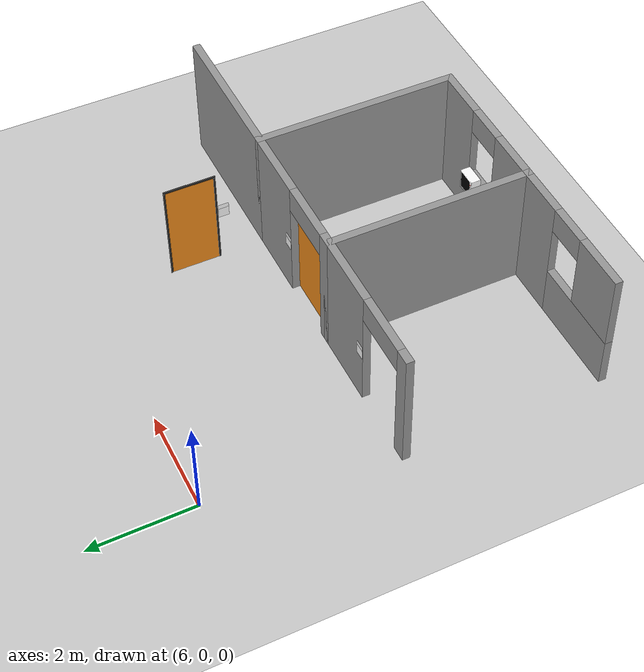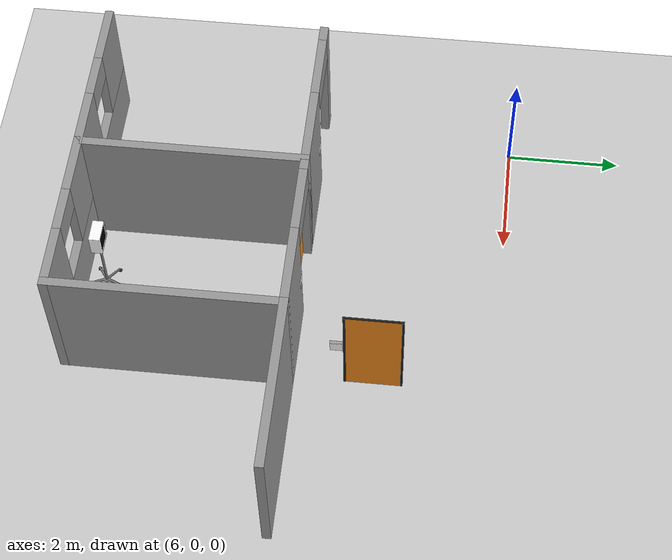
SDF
<sdf version="1.6">
 <world name="default">
  <model name="ground_plane">
   <static>1</static>
   <link name="link">
    <collision name="collision">
     <geometry><plane><normal>0 0 1</normal><size>100 100</size></plane></geometry>
     <surface><friction><ode><mu>100</mu><mu2>50</mu2></ode></friction></surface>
    </collision>
    <visual name="visual">
     <cast_shadows>0</cast_shadows>
     <geometry><plane><normal>0 0 1</normal><size>100 100</size></plane></geometry>
     <material>
      <script><uri>file://media/materials/scripts/gazebo.material</uri><name>Gazebo/Grey</name></script>
     </material>
    </visual>
   </link>
  </model>
  <model name="vitals_monitor">
   <static>1</static>
   <link name="vitals_monitor">
    <collision name="vitals_monitor">
     <geometry><mesh><uri>model://vitals_monitor/meshes/model.dae</uri></mesh></geometry>
    </collision>
    <visual name="vitals_monitor_mesh">
     <geometry><mesh><uri>model://vitals_monitor/meshes/model.dae</uri></mesh></geometry>
    </visual>
   </link>
   <pose>9.47829 -6.89873 0 0 -0 3.14159</pose>
  </model>
  <model name="room_door_3_clone_clone_0">
   <link name="base_link">
    <inertial>
     <pose>0 0 1.00051 0 -0 0</pose>
     <mass>2001</mass>
     <inertia><ixx>797.85</ixx><ixy>0</ixy><ixz>0</ixz><iyy>4.0501</iyy><iyz>0</iyz><izz>796.8</izz></inertia>
    </inertial>
    <collision name="base_link_fixed_joint_lump__top_post_collision">
     <pose>0 0 2.025 0 -0 0</pose>
     <geometry><box><size>0.01 1.3 0.05</size></box></geometry>
    </collision>
    <collision name="base_link_fixed_joint_lump__left_post_collision_1">
     <pose>0 -0.63 1 0 -0 0</pose>
     <geometry><box><size>0.01 0.04 2</size></box></geometry>
    </collision>
    <collision name="base_link_fixed_joint_lump__right_post_collision_2">
     <pose>0 0.63 1 0 -0 0</pose>
     <geometry><box><size>0.01 0.04 2</size></box></geometry>
    </collision>
    <visual name="base_link_fixed_joint_lump__top_post_visual">
     <pose>0 0 2.025 0 -0 0</pose>
     <geometry><box><size>0.01 1.3 0.05</size></box></geometry>
     <material>
      <script><name>Gazebo/Black</name><uri>file://media/materials/scripts/gazebo.material</uri></script>
     </material>
    </visual>
    <visual name="base_link_fixed_joint_lump__left_post_visual_1">
     <pose>0 -0.63 1 0 -0 0</pose>
     <geometry><box><size>0.01 0.04 2</size></box></geometry>
     <material>
      <script><name>Gazebo/Black</name><uri>file://media/materials/scripts/gazebo.material</uri></script>
     </material>
    </visual>
    <visual name="base_link_fixed_joint_lump__right_post_visual_2">
     <pose>0 0.63 1 0 -0 0</pose>
     <geometry><box><size>0.01 0.04 2</size></box></geometry>
     <material>
      <script><name>Gazebo/Black</name><uri>file://media/materials/scripts/gazebo.material</uri></script>
     </material>
    </visual>
   </link>
   <link name="door_front">
    <pose>0.005 -0.61 1 0 -0 0</pose>
    <inertial>
     <mass>1</mass>
     <inertia><ixx>1</ixx><ixy>0</ixy><ixz>0</ixz><iyy>1</iyy><iyz>0</iyz><izz>1</izz></inertia>
    </inertial>
    <collision name="door_front_collision">
     <pose>-0.005 0.61 0.005 0 -0 0</pose>
     <geometry><box><size>0.01 1.22 1.99</size></box></geometry>
    </collision>
    <visual name="door_front_visual">
     <pose>-0.005 0.61 0.005 0 -0 0</pose>
     <geometry><box><size>0.01 1.22 1.99</size></box></geometry>
     <material>
      <script><name>Gazebo/Orange</name><uri>file://media/materials/scripts/gazebo.material</uri></script>
     </material>
    </visual>
   </link>
   <joint name="door_front_to_left_post" type="revolute">
    <child>door_front</child>
    <parent>base_link</parent>
    <axis>
     <xyz>0 0 1</xyz>
     <limit><lower>-3.14</lower><upper>0</upper><effort>1000</effort><velocity>100</velocity></limit>
     <dynamics>
      <damping>0.5</damping>
      <friction>0</friction>
      <spring_reference>0</spring_reference>
      <spring_stiffness>0</spring_stiffness>
     </dynamics>
     <use_parent_model_frame>0</use_parent_model_frame>
    </axis>
   </joint>
   <pose>9.11377 -3.55071 -1e-06 -1e-06 -0 -1.57102</pose>
  </model>
  <model name="room_door_5">
   <link name="base_link">
    <inertial>
     <pose>0 0 1.00051 0 -0 0</pose>
     <mass>2001</mass>
     <inertia><ixx>464.85</ixx><ixy>0</ixy><ixz>0</ixz><iyy>4.0501</iyy><iyz>0</iyz><izz>463.8</izz></inertia>
    </inertial>
    <collision name="base_link_fixed_joint_lump__top_post_collision">
     <pose>0 0 2.025 0 -0 0</pose>
     <geometry><box><size>0.01 1 0.05</size></box></geometry>
    </collision>
    <collision name="base_link_fixed_joint_lump__left_post_collision_1">
     <pose>0 -0.48 1 0 -0 0</pose>
     <geometry><box><size>0.01 0.04 2</size></box></geometry>
    </collision>
    <collision name="base_link_fixed_joint_lump__right_post_collision_2">
     <pose>0 0.48 1 0 -0 0</pose>
     <geometry><box><size>0.01 0.04 2</size></box></geometry>
    </collision>
    <visual name="base_link_fixed_joint_lump__top_post_visual">
     <pose>0 0 2.025 0 -0 0</pose>
     <geometry><box><size>0.01 1 0.05</size></box></geometry>
     <material>
      <script><name>Gazebo/Black</name><uri>file://media/materials/scripts/gazebo.material</uri></script>
     </material>
    </visual>
    <visual name="base_link_fixed_joint_lump__left_post_visual_1">
     <pose>0 -0.48 1 0 -0 0</pose>
     <geometry><box><size>0.01 0.04 2</size></box></geometry>
     <material>
      <script><name>Gazebo/Black</name><uri>file://media/materials/scripts/gazebo.material</uri></script>
     </material>
    </visual>
    <visual name="base_link_fixed_joint_lump__right_post_visual_2">
     <pose>0 0.48 1 0 -0 0</pose>
     <geometry><box><size>0.01 0.04 2</size></box></geometry>
     <material>
      <script><name>Gazebo/Black</name><uri>file://media/materials/scripts/gazebo.material</uri></script>
     </material>
    </visual>
   </link>
   <link name="door_front">
    <pose>0.005 -0.46 1 0 -0 0</pose>
    <inertial>
     <mass>1</mass>
     <inertia><ixx>1</ixx><ixy>0</ixy><ixz>0</ixz><iyy>1</iyy><iyz>0</iyz><izz>1</izz></inertia>
    </inertial>
    <collision name="door_front_collision">
     <pose>-0.005 0.46 0.005 0 -0 0</pose>
     <geometry><box><size>0.01 0.92 1.99</size></box></geometry>
    </collision>
    <visual name="door_front_visual">
     <pose>-0.005 0.46 0.005 0 -0 0</pose>
     <geometry><box><size>0.01 0.92 1.99</size></box></geometry>
     <material>
      <script><name>Gazebo/Orange</name><uri>file://media/materials/scripts/gazebo.material</uri></script>
     </material>
    </visual>
   </link>
   <joint name="door_front_to_left_post" type="revolute">
    <child>door_front</child>
    <parent>base_link</parent>
    <axis>
     <xyz>0 0 1</xyz>
     <limit><lower>-3.14</lower><upper>0</upper><effort>1000</effort><velocity>100</velocity></limit>
     <dynamics>
      <damping>0.5</damping>
      <friction>0</friction>
      <spring_reference>0</spring_reference>
      <spring_stiffness>0</spring_stiffness>
     </dynamics>
     <use_parent_model_frame>0</use_parent_model_frame>
    </axis>
   </joint>
   <pose>11.0569 -2.04956 -0 0 -0 3.14159</pose>
  </model>
  <model name="hospital_walls">
   <link name="Wall_28_clone_clone">
    <pose>12.55 -3.425 0 0 -0 0</pose>
    <inertial>
     <mass>1</mass>
     <inertia><ixx>1</ixx><ixy>0</ixy><ixz>0</ixz><iyy>1</iyy><iyz>0</iyz><izz>1</izz></inertia>
    </inertial>
    <visual name="Wall_28_Visual_2">
     <pose>0 0 1.25 0 -0 0</pose>
     <geometry><box><size>3 0.15 2.5</size></box></geometry>
     <material>
      <script><uri>file://media/materials/scripts/gazebo.material</uri><name>Gazebo/Grey</name></script>
      <ambient>1 1 1 1</ambient>
      <shader type="pixel"><normal_map>__default__</normal_map></shader>
      <diffuse>0.7 0.7 0.7 1</diffuse>
      <specular>0.01 0.01 0.01 1</specular>
      <emissive>0 0 0 1</emissive>
     </material>
     <meta><layer>0</layer></meta>
    </visual>
    <collision name="Wall_28_Collision_2">
     <pose>0 0 1.25 0 -0 0</pose>
     <geometry><box><size>3 0.15 2.5</size></box></geometry>
     <surface>
      <friction>
       <ode><mu>1</mu><mu2>1</mu2><fdir1>0 0 0</fdir1><slip1>0</slip1><slip2>0</slip2></ode>
       <torsional>
        <coefficient>1</coefficient>
        <patch_radius>0</patch_radius>
        <surface_radius>0</surface_radius>
        <use_patch_radius>1</use_patch_radius>
        <ode><slip>0</slip></ode>
       </torsional>
      </friction>
      <bounce><restitution_coefficient>0</restitution_coefficient><threshold>1e+06</threshold></bounce>
      <contact>
       <collide_without_contact>0</collide_without_contact>
       <collide_without_contact_bitmask>1</collide_without_contact_bitmask>
       <collide_bitmask>1</collide_bitmask>
       <ode>
        <soft_cfm>0</soft_cfm>
        <soft_erp>0.2</soft_erp>
        <kp>1e+13</kp>
        <kd>1</kd>
        <max_vel>0.01</max_vel>
        <min_depth>0</min_depth>
       </ode>
       <bullet>
        <split_impulse>1</split_impulse>
        <split_impulse_penetration_threshold>-0.01</split_impulse_penetration_threshold>
        <soft_cfm>0</soft_cfm>
        <soft_erp>0.2</soft_erp>
        <kp>1e+13</kp>
        <kd>1</kd>
       </bullet>
      </contact>
     </surface>
    </collision>
   </link>
   <link name="Wall_29">
    <pose>11.125 -5.35 0 0 0 -1.5708</pose>
    <visual name="Wall_29_Visual">
     <pose>0 0 1.25 0 -0 0</pose>
     <geometry><box><size>4 0.15 2.5</size></box></geometry>
     <material>
      <script><uri>file://media/materials/scripts/gazebo.material</uri><name>Gazebo/Grey</name></script>
      <ambient>1 1 1 1</ambient>
      <shader type="pixel"/>
     </material>
     <meta><layer>0</layer></meta>
    </visual>
    <collision name="Wall_29_Collision">
     <pose>0 0 1.25 0 -0 0</pose>
     <geometry><box><size>4 0.15 2.5</size></box></geometry>
     <surface>
      <friction>
       <ode><mu>1</mu><mu2>1</mu2><fdir1>0 0 0</fdir1><slip1>0</slip1><slip2>0</slip2></ode>
       <torsional>
        <coefficient>1</coefficient>
        <patch_radius>0</patch_radius>
        <surface_radius>0</surface_radius>
        <use_patch_radius>1</use_patch_radius>
        <ode><slip>0</slip></ode>
       </torsional>
      </friction>
      <bounce><restitution_coefficient>0</restitution_coefficient><threshold>1e+06</threshold></bounce>
      <contact>
       <collide_without_contact>0</collide_without_contact>
       <collide_without_contact_bitmask>1</collide_without_contact_bitmask>
       <collide_bitmask>1</collide_bitmask>
       <ode>
        <soft_cfm>0</soft_cfm>
        <soft_erp>0.2</soft_erp>
        <kp>1e+13</kp>
        <kd>1</kd>
        <max_vel>0.01</max_vel>
        <min_depth>0</min_depth>
       </ode>
       <bullet>
        <split_impulse>1</split_impulse>
        <split_impulse_penetration_threshold>-0.01</split_impulse_penetration_threshold>
        <soft_cfm>0</soft_cfm>
        <soft_erp>0.2</soft_erp>
        <kp>1e+13</kp>
        <kd>1</kd>
       </bullet>
      </contact>
     </surface>
    </collision>
   </link>
   <link name="Wall_30">
    <pose>9.7 -7.275 0 0 -0 3.14159</pose>
    <inertial>
     <mass>1</mass>
     <inertia><ixx>1</ixx><ixy>0</ixy><ixz>0</ixz><iyy>1</iyy><iyz>0</iyz><izz>1</izz></inertia>
    </inertial>
    <visual name="Wall_30_Visual_3">
     <pose>0 0 2.25 0 -0 0</pose>
     <geometry><box><size>0.8 0.15 0.5</size></box></geometry>
     <material>
      <script><uri>file://media/materials/scripts/gazebo.material</uri><name>Gazebo/Grey</name></script>
      <ambient>1 1 1 1</ambient>
      <shader type="vertex"><normal_map>__default__</normal_map></shader>
      <diffuse>0.7 0.7 0.7 1</diffuse>
      <specular>0.01 0.01 0.01 1</specular>
      <emissive>0 0 0 1</emissive>
     </material>
     <meta><layer>0</layer></meta>
    </visual>
    <visual name="Wall_30_Visual_1">
     <pose>0.55 0 0.5 0 -0 0</pose>
     <geometry><box><size>1.9 0.15 1</size></box></geometry>
     <material>
      <script><uri>file://media/materials/scripts/gazebo.material</uri><name>Gazebo/Grey</name></script>
      <ambient>1 1 1 1</ambient>
      <shader type="vertex"><normal_map>__default__</normal_map></shader>
      <diffuse>0.7 0.7 0.7 1</diffuse>
      <specular>0.01 0.01 0.01 1</specular>
      <emissive>0 0 0 1</emissive>
     </material>
     <meta><layer>0</layer></meta>
    </visual>
    <visual name="Wall_30_Visual_0">
     <pose>-0.95 0 1.25 0 -0 0</pose>
     <geometry><box><size>1.1 0.15 2.5</size></box></geometry>
     <material>
      <script><uri>file://media/materials/scripts/gazebo.material</uri><name>Gazebo/Grey</name></script>
      <ambient>1 1 1 1</ambient>
      <shader type="vertex"><normal_map>__default__</normal_map></shader>
      <diffuse>0.7 0.7 0.7 1</diffuse>
      <specular>0.01 0.01 0.01 1</specular>
      <emissive>0 0 0 1</emissive>
     </material>
     <meta><layer>0</layer></meta>
    </visual>
    <visual name="Wall_30_Visual_2">
     <pose>0.95 0 1.75 0 -0 0</pose>
     <geometry><box><size>1.1 0.15 1.5</size></box></geometry>
     <material>
      <script><uri>file://media/materials/scripts/gazebo.material</uri><name>Gazebo/Grey</name></script>
      <ambient>1 1 1 1</ambient>
      <shader type="vertex"><normal_map>__default__</normal_map></shader>
      <diffuse>0.7 0.7 0.7 1</diffuse>
      <specular>0.01 0.01 0.01 1</specular>
      <emissive>0 0 0 1</emissive>
     </material>
     <meta><layer>0</layer></meta>
    </visual>
    <collision name="Wall_30_Collision_3">
     <pose>0 0 2.25 0 -0 0</pose>
     <geometry><box><size>0.8 0.15 0.5</size></box></geometry>
     <surface>
      <friction>
       <ode><mu>1</mu><mu2>1</mu2><fdir1>0 0 0</fdir1><slip1>0</slip1><slip2>0</slip2></ode>
       <torsional>
        <coefficient>1</coefficient>
        <patch_radius>0</patch_radius>
        <surface_radius>0</surface_radius>
        <use_patch_radius>1</use_patch_radius>
        <ode><slip>0</slip></ode>
       </torsional>
      </friction>
      <bounce><restitution_coefficient>0</restitution_coefficient><threshold>1e+06</threshold></bounce>
      <contact>
       <collide_without_contact>0</collide_without_contact>
       <collide_without_contact_bitmask>1</collide_without_contact_bitmask>
       <collide_bitmask>1</collide_bitmask>
       <ode>
        <soft_cfm>0</soft_cfm>
        <soft_erp>0.2</soft_erp>
        <kp>1e+13</kp>
        <kd>1</kd>
        <max_vel>0.01</max_vel>
        <min_depth>0</min_depth>
       </ode>
       <bullet>
        <split_impulse>1</split_impulse>
        <split_impulse_penetration_threshold>-0.01</split_impulse_penetration_threshold>
        <soft_cfm>0</soft_cfm>
        <soft_erp>0.2</soft_erp>
        <kp>1e+13</kp>
        <kd>1</kd>
       </bullet>
      </contact>
     </surface>
    </collision>
    <collision name="Wall_30_Collision_0">
     <pose>-0.95 0 1.25 0 -0 0</pose>
     <geometry><box><size>1.1 0.15 2.5</size></box></geometry>
     <surface>
      <friction>
       <ode><mu>1</mu><mu2>1</mu2><fdir1>0 0 0</fdir1><slip1>0</slip1><slip2>0</slip2></ode>
       <torsional>
        <coefficient>1</coefficient>
        <patch_radius>0</patch_radius>
        <surface_radius>0</surface_radius>
        <use_patch_radius>1</use_patch_radius>
        <ode><slip>0</slip></ode>
       </torsional>
      </friction>
      <bounce><restitution_coefficient>0</restitution_coefficient><threshold>1e+06</threshold></bounce>
      <contact>
       <collide_without_contact>0</collide_without_contact>
       <collide_without_contact_bitmask>1</collide_without_contact_bitmask>
       <collide_bitmask>1</collide_bitmask>
       <ode>
        <soft_cfm>0</soft_cfm>
        <soft_erp>0.2</soft_erp>
        <kp>1e+13</kp>
        <kd>1</kd>
        <max_vel>0.01</max_vel>
        <min_depth>0</min_depth>
       </ode>
       <bullet>
        <split_impulse>1</split_impulse>
        <split_impulse_penetration_threshold>-0.01</split_impulse_penetration_threshold>
        <soft_cfm>0</soft_cfm>
        <soft_erp>0.2</soft_erp>
        <kp>1e+13</kp>
        <kd>1</kd>
       </bullet>
      </contact>
     </surface>
    </collision>
    <collision name="Wall_30_Collision_1">
     <pose>0.55 0 0.5 0 -0 0</pose>
     <geometry><box><size>1.9 0.15 1</size></box></geometry>
     <surface>
      <friction>
       <ode><mu>1</mu><mu2>1</mu2><fdir1>0 0 0</fdir1><slip1>0</slip1><slip2>0</slip2></ode>
       <torsional>
        <coefficient>1</coefficient>
        <patch_radius>0</patch_radius>
        <surface_radius>0</surface_radius>
        <use_patch_radius>1</use_patch_radius>
        <ode><slip>0</slip></ode>
       </torsional>
      </friction>
      <bounce><restitution_coefficient>0</restitution_coefficient><threshold>1e+06</threshold></bounce>
      <contact>
       <collide_without_contact>0</collide_without_contact>
       <collide_without_contact_bitmask>1</collide_without_contact_bitmask>
       <collide_bitmask>1</collide_bitmask>
       <ode>
        <soft_cfm>0</soft_cfm>
        <soft_erp>0.2</soft_erp>
        <kp>1e+13</kp>
        <kd>1</kd>
        <max_vel>0.01</max_vel>
        <min_depth>0</min_depth>
       </ode>
       <bullet>
        <split_impulse>1</split_impulse>
        <split_impulse_penetration_threshold>-0.01</split_impulse_penetration_threshold>
        <soft_cfm>0</soft_cfm>
        <soft_erp>0.2</soft_erp>
        <kp>1e+13</kp>
        <kd>1</kd>
       </bullet>
      </contact>
     </surface>
    </collision>
    <collision name="Wall_30_Collision_2">
     <pose>0.95 0 1.75 0 -0 0</pose>
     <geometry><box><size>1.1 0.15 1.5</size></box></geometry>
     <surface>
      <friction>
       <ode><mu>1</mu><mu2>1</mu2><fdir1>0 0 0</fdir1><slip1>0</slip1><slip2>0</slip2></ode>
       <torsional>
        <coefficient>1</coefficient>
        <patch_radius>0</patch_radius>
        <surface_radius>0</surface_radius>
        <use_patch_radius>1</use_patch_radius>
        <ode><slip>0</slip></ode>
       </torsional>
      </friction>
      <bounce><restitution_coefficient>0</restitution_coefficient><threshold>1e+06</threshold></bounce>
      <contact>
       <collide_without_contact>0</collide_without_contact>
       <collide_without_contact_bitmask>1</collide_without_contact_bitmask>
       <collide_bitmask>1</collide_bitmask>
       <ode>
        <soft_cfm>0</soft_cfm>
        <soft_erp>0.2</soft_erp>
        <kp>1e+13</kp>
        <kd>1</kd>
        <max_vel>0.01</max_vel>
        <min_depth>0</min_depth>
       </ode>
       <bullet>
        <split_impulse>1</split_impulse>
        <split_impulse_penetration_threshold>-0.01</split_impulse_penetration_threshold>
        <soft_cfm>0</soft_cfm>
        <soft_erp>0.2</soft_erp>
        <kp>1e+13</kp>
        <kd>1</kd>
       </bullet>
      </contact>
     </surface>
    </collision>
   </link>
   <link name="Wall_31">
    <pose>8.275 -5.35 0 0 -0 1.5708</pose>
    <visual name="Wall_31_Visual">
     <pose>0 0 1.25 0 -0 0</pose>
     <geometry><box><size>4 0.15 2.5</size></box></geometry>
     <material>
      <script><uri>file://media/materials/scripts/gazebo.material</uri><name>Gazebo/Grey</name></script>
      <ambient>1 1 1 1</ambient>
      <shader type="pixel"/>
     </material>
     <meta><layer>0</layer></meta>
    </visual>
    <collision name="Wall_31_Collision">
     <pose>0 0 1.25 0 -0 0</pose>
     <geometry><box><size>4 0.15 2.5</size></box></geometry>
     <surface>
      <friction>
       <ode><mu>1</mu><mu2>1</mu2><fdir1>0 0 0</fdir1><slip1>0</slip1><slip2>0</slip2></ode>
       <torsional>
        <coefficient>1</coefficient>
        <patch_radius>0</patch_radius>
        <surface_radius>0</surface_radius>
        <use_patch_radius>1</use_patch_radius>
        <ode><slip>0</slip></ode>
       </torsional>
      </friction>
      <bounce><restitution_coefficient>0</restitution_coefficient><threshold>1e+06</threshold></bounce>
      <contact>
       <collide_without_contact>0</collide_without_contact>
       <collide_without_contact_bitmask>1</collide_without_contact_bitmask>
       <collide_bitmask>1</collide_bitmask>
       <ode>
        <soft_cfm>0</soft_cfm>
        <soft_erp>0.2</soft_erp>
        <kp>1e+13</kp>
        <kd>1</kd>
        <max_vel>0.01</max_vel>
        <min_depth>0</min_depth>
       </ode>
       <bullet>
        <split_impulse>1</split_impulse>
        <split_impulse_penetration_threshold>-0.01</split_impulse_penetration_threshold>
        <soft_cfm>0</soft_cfm>
        <soft_erp>0.2</soft_erp>
        <kp>1e+13</kp>
        <kd>1</kd>
       </bullet>
      </contact>
     </surface>
    </collision>
   </link>
   <link name="Wall_32">
    <pose>9.7 -3.425 0 0 -0 0</pose>
    <visual name="Wall_32_Visual_1">
     <pose>0.75 0 1.25 0 -0 0</pose>
     <geometry><box><size>1.5 0.15 2.5</size></box></geometry>
     <material>
      <script><uri>file://media/materials/scripts/gazebo.material</uri><name>Gazebo/Grey</name></script>
      <ambient>1 1 1 1</ambient>
      <shader type="pixel"/>
     </material>
     <meta><layer>0</layer></meta>
    </visual>
    <visual name="Wall_32_Visual_2">
     <pose>-0.6 0 2.25 0 -0 0</pose>
     <geometry><box><size>1.2 0.15 0.5</size></box></geometry>
     <material>
      <script><uri>file://media/materials/scripts/gazebo.material</uri><name>Gazebo/Grey</name></script>
      <ambient>1 1 1 1</ambient>
      <shader type="pixel"/>
     </material>
     <meta><layer>0</layer></meta>
    </visual>
    <visual name="Wall_32_Visual_0">
     <pose>-1.35 0 1.25 0 -0 0</pose>
     <geometry><box><size>0.3 0.15 2.5</size></box></geometry>
     <material>
      <script><uri>file://media/materials/scripts/gazebo.material</uri><name>Gazebo/Grey</name></script>
      <ambient>1 1 1 1</ambient>
      <shader type="pixel"/>
     </material>
     <meta><layer>0</layer></meta>
    </visual>
    <collision name="Wall_32_Collision_1">
     <pose>0.75 0 1.25 0 -0 0</pose>
     <geometry><box><size>1.5 0.15 2.5</size></box></geometry>
     <surface>
      <friction>
       <ode><mu>1</mu><mu2>1</mu2><fdir1>0 0 0</fdir1><slip1>0</slip1><slip2>0</slip2></ode>
       <torsional>
        <coefficient>1</coefficient>
        <patch_radius>0</patch_radius>
        <surface_radius>0</surface_radius>
        <use_patch_radius>1</use_patch_radius>
        <ode><slip>0</slip></ode>
       </torsional>
      </friction>
      <bounce><restitution_coefficient>0</restitution_coefficient><threshold>1e+06</threshold></bounce>
      <contact>
       <collide_without_contact>0</collide_without_contact>
       <collide_without_contact_bitmask>1</collide_without_contact_bitmask>
       <collide_bitmask>1</collide_bitmask>
       <ode>
        <soft_cfm>0</soft_cfm>
        <soft_erp>0.2</soft_erp>
        <kp>1e+13</kp>
        <kd>1</kd>
        <max_vel>0.01</max_vel>
        <min_depth>0</min_depth>
       </ode>
       <bullet>
        <split_impulse>1</split_impulse>
        <split_impulse_penetration_threshold>-0.01</split_impulse_penetration_threshold>
        <soft_cfm>0</soft_cfm>
        <soft_erp>0.2</soft_erp>
        <kp>1e+13</kp>
        <kd>1</kd>
       </bullet>
      </contact>
     </surface>
    </collision>
    <collision name="Wall_32_Collision_0">
     <pose>-1.35 0 1.25 0 -0 0</pose>
     <geometry><box><size>0.3 0.15 2.5</size></box></geometry>
     <surface>
      <friction>
       <ode><mu>1</mu><mu2>1</mu2><fdir1>0 0 0</fdir1><slip1>0</slip1><slip2>0</slip2></ode>
       <torsional>
        <coefficient>1</coefficient>
        <patch_radius>0</patch_radius>
        <surface_radius>0</surface_radius>
        <use_patch_radius>1</use_patch_radius>
        <ode><slip>0</slip></ode>
       </torsional>
      </friction>
      <bounce><restitution_coefficient>0</restitution_coefficient><threshold>1e+06</threshold></bounce>
      <contact>
       <collide_without_contact>0</collide_without_contact>
       <collide_without_contact_bitmask>1</collide_without_contact_bitmask>
       <collide_bitmask>1</collide_bitmask>
       <ode>
        <soft_cfm>0</soft_cfm>
        <soft_erp>0.2</soft_erp>
        <kp>1e+13</kp>
        <kd>1</kd>
        <max_vel>0.01</max_vel>
        <min_depth>0</min_depth>
       </ode>
       <bullet>
        <split_impulse>1</split_impulse>
        <split_impulse_penetration_threshold>-0.01</split_impulse_penetration_threshold>
        <soft_cfm>0</soft_cfm>
        <soft_erp>0.2</soft_erp>
        <kp>1e+13</kp>
        <kd>1</kd>
       </bullet>
      </contact>
     </surface>
    </collision>
    <collision name="Wall_32_Collision_2">
     <pose>-0.6 0 2.25 0 -0 0</pose>
     <geometry><box><size>1.2 0.15 0.5</size></box></geometry>
     <surface>
      <friction>
       <ode><mu>1</mu><mu2>1</mu2><fdir1>0 0 0</fdir1><slip1>0</slip1><slip2>0</slip2></ode>
       <torsional>
        <coefficient>1</coefficient>
        <patch_radius>0</patch_radius>
        <surface_radius>0</surface_radius>
        <use_patch_radius>1</use_patch_radius>
        <ode><slip>0</slip></ode>
       </torsional>
      </friction>
      <bounce><restitution_coefficient>0</restitution_coefficient><threshold>1e+06</threshold></bounce>
      <contact>
       <collide_without_contact>0</collide_without_contact>
       <collide_without_contact_bitmask>1</collide_without_contact_bitmask>
       <collide_bitmask>1</collide_bitmask>
       <ode>
        <soft_cfm>0</soft_cfm>
        <soft_erp>0.2</soft_erp>
        <kp>1e+13</kp>
        <kd>1</kd>
        <max_vel>0.01</max_vel>
        <min_depth>0</min_depth>
       </ode>
       <bullet>
        <split_impulse>1</split_impulse>
        <split_impulse_penetration_threshold>-0.01</split_impulse_penetration_threshold>
        <soft_cfm>0</soft_cfm>
        <soft_erp>0.2</soft_erp>
        <kp>1e+13</kp>
        <kd>1</kd>
       </bullet>
      </contact>
     </surface>
    </collision>
   </link>
   <link name="Wall_34">
    <pose>6.85 -7.275 0 0 -0 3.14159</pose>
    <inertial>
     <mass>1</mass>
     <inertia><ixx>1</ixx><ixy>0</ixy><ixz>0</ixz><iyy>1</iyy><iyz>0</iyz><izz>1</izz></inertia>
    </inertial>
    <visual name="Wall_34_Visual_0">
     <pose>-0.95 0 1.25 0 -0 0</pose>
     <geometry><box><size>1.1 0.15 2.5</size></box></geometry>
     <material>
      <script><uri>file://media/materials/scripts/gazebo.material</uri><name>Gazebo/Grey</name></script>
      <ambient>1 1 1 1</ambient>
      <shader type="vertex"><normal_map>__default__</normal_map></shader>
      <diffuse>0.7 0.7 0.7 1</diffuse>
      <specular>0.01 0.01 0.01 1</specular>
      <emissive>0 0 0 1</emissive>
     </material>
     <meta><layer>0</layer></meta>
    </visual>
    <visual name="Wall_34_Visual_3">
     <pose>0 0 2.25 0 -0 0</pose>
     <geometry><box><size>0.8 0.15 0.5</size></box></geometry>
     <material>
      <script><uri>file://media/materials/scripts/gazebo.material</uri><name>Gazebo/Grey</name></script>
      <ambient>1 1 1 1</ambient>
      <shader type="vertex"><normal_map>__default__</normal_map></shader>
      <diffuse>0.7 0.7 0.7 1</diffuse>
      <specular>0.01 0.01 0.01 1</specular>
      <emissive>0 0 0 1</emissive>
     </material>
     <meta><layer>0</layer></meta>
    </visual>
    <visual name="Wall_34_Visual_2">
     <pose>0.95 0 1.75 0 -0 0</pose>
     <geometry><box><size>1.1 0.15 1.5</size></box></geometry>
     <material>
      <script><uri>file://media/materials/scripts/gazebo.material</uri><name>Gazebo/Grey</name></script>
      <ambient>1 1 1 1</ambient>
      <shader type="vertex"><normal_map>__default__</normal_map></shader>
      <diffuse>0.7 0.7 0.7 1</diffuse>
      <specular>0.01 0.01 0.01 1</specular>
      <emissive>0 0 0 1</emissive>
     </material>
     <meta><layer>0</layer></meta>
    </visual>
    <visual name="Wall_34_Visual_1">
     <pose>0.55 0 0.5 0 -0 0</pose>
     <geometry><box><size>1.9 0.15 1</size></box></geometry>
     <material>
      <script><uri>file://media/materials/scripts/gazebo.material</uri><name>Gazebo/Grey</name></script>
      <ambient>1 1 1 1</ambient>
      <shader type="vertex"><normal_map>__default__</normal_map></shader>
      <diffuse>0.7 0.7 0.7 1</diffuse>
      <specular>0.01 0.01 0.01 1</specular>
      <emissive>0 0 0 1</emissive>
     </material>
     <meta><layer>0</layer></meta>
    </visual>
    <collision name="Wall_34_Collision_1">
     <pose>0.55 0 0.5 0 -0 0</pose>
     <geometry><box><size>1.9 0.15 1</size></box></geometry>
     <surface>
      <friction>
       <ode><mu>1</mu><mu2>1</mu2><fdir1>0 0 0</fdir1><slip1>0</slip1><slip2>0</slip2></ode>
       <torsional>
        <coefficient>1</coefficient>
        <patch_radius>0</patch_radius>
        <surface_radius>0</surface_radius>
        <use_patch_radius>1</use_patch_radius>
        <ode><slip>0</slip></ode>
       </torsional>
      </friction>
      <bounce><restitution_coefficient>0</restitution_coefficient><threshold>1e+06</threshold></bounce>
      <contact>
       <collide_without_contact>0</collide_without_contact>
       <collide_without_contact_bitmask>1</collide_without_contact_bitmask>
       <collide_bitmask>1</collide_bitmask>
       <ode>
        <soft_cfm>0</soft_cfm>
        <soft_erp>0.2</soft_erp>
        <kp>1e+13</kp>
        <kd>1</kd>
        <max_vel>0.01</max_vel>
        <min_depth>0</min_depth>
       </ode>
       <bullet>
        <split_impulse>1</split_impulse>
        <split_impulse_penetration_threshold>-0.01</split_impulse_penetration_threshold>
        <soft_cfm>0</soft_cfm>
        <soft_erp>0.2</soft_erp>
        <kp>1e+13</kp>
        <kd>1</kd>
       </bullet>
      </contact>
     </surface>
    </collision>
    <collision name="Wall_34_Collision_3">
     <pose>0 0 2.25 0 -0 0</pose>
     <geometry><box><size>0.8 0.15 0.5</size></box></geometry>
     <surface>
      <friction>
       <ode><mu>1</mu><mu2>1</mu2><fdir1>0 0 0</fdir1><slip1>0</slip1><slip2>0</slip2></ode>
       <torsional>
        <coefficient>1</coefficient>
        <patch_radius>0</patch_radius>
        <surface_radius>0</surface_radius>
        <use_patch_radius>1</use_patch_radius>
        <ode><slip>0</slip></ode>
       </torsional>
      </friction>
      <bounce><restitution_coefficient>0</restitution_coefficient><threshold>1e+06</threshold></bounce>
      <contact>
       <collide_without_contact>0</collide_without_contact>
       <collide_without_contact_bitmask>1</collide_without_contact_bitmask>
       <collide_bitmask>1</collide_bitmask>
       <ode>
        <soft_cfm>0</soft_cfm>
        <soft_erp>0.2</soft_erp>
        <kp>1e+13</kp>
        <kd>1</kd>
        <max_vel>0.01</max_vel>
        <min_depth>0</min_depth>
       </ode>
       <bullet>
        <split_impulse>1</split_impulse>
        <split_impulse_penetration_threshold>-0.01</split_impulse_penetration_threshold>
        <soft_cfm>0</soft_cfm>
        <soft_erp>0.2</soft_erp>
        <kp>1e+13</kp>
        <kd>1</kd>
       </bullet>
      </contact>
     </surface>
    </collision>
    <collision name="Wall_34_Collision_2">
     <pose>0.95 0 1.75 0 -0 0</pose>
     <geometry><box><size>1.1 0.15 1.5</size></box></geometry>
     <surface>
      <friction>
       <ode><mu>1</mu><mu2>1</mu2><fdir1>0 0 0</fdir1><slip1>0</slip1><slip2>0</slip2></ode>
       <torsional>
        <coefficient>1</coefficient>
        <patch_radius>0</patch_radius>
        <surface_radius>0</surface_radius>
        <use_patch_radius>1</use_patch_radius>
        <ode><slip>0</slip></ode>
       </torsional>
      </friction>
      <bounce><restitution_coefficient>0</restitution_coefficient><threshold>1e+06</threshold></bounce>
      <contact>
       <collide_without_contact>0</collide_without_contact>
       <collide_without_contact_bitmask>1</collide_without_contact_bitmask>
       <collide_bitmask>1</collide_bitmask>
       <ode>
        <soft_cfm>0</soft_cfm>
        <soft_erp>0.2</soft_erp>
        <kp>1e+13</kp>
        <kd>1</kd>
        <max_vel>0.01</max_vel>
        <min_depth>0</min_depth>
       </ode>
       <bullet>
        <split_impulse>1</split_impulse>
        <split_impulse_penetration_threshold>-0.01</split_impulse_penetration_threshold>
        <soft_cfm>0</soft_cfm>
        <soft_erp>0.2</soft_erp>
        <kp>1e+13</kp>
        <kd>1</kd>
       </bullet>
      </contact>
     </surface>
    </collision>
    <collision name="Wall_34_Collision_0">
     <pose>-0.95 0 1.25 0 -0 0</pose>
     <geometry><box><size>1.1 0.15 2.5</size></box></geometry>
     <surface>
      <friction>
       <ode><mu>1</mu><mu2>1</mu2><fdir1>0 0 0</fdir1><slip1>0</slip1><slip2>0</slip2></ode>
       <torsional>
        <coefficient>1</coefficient>
        <patch_radius>0</patch_radius>
        <surface_radius>0</surface_radius>
        <use_patch_radius>1</use_patch_radius>
        <ode><slip>0</slip></ode>
       </torsional>
      </friction>
      <bounce><restitution_coefficient>0</restitution_coefficient><threshold>1e+06</threshold></bounce>
      <contact>
       <collide_without_contact>0</collide_without_contact>
       <collide_without_contact_bitmask>1</collide_without_contact_bitmask>
       <collide_bitmask>1</collide_bitmask>
       <ode>
        <soft_cfm>0</soft_cfm>
        <soft_erp>0.2</soft_erp>
        <kp>1e+13</kp>
        <kd>1</kd>
        <max_vel>0.01</max_vel>
        <min_depth>0</min_depth>
       </ode>
       <bullet>
        <split_impulse>1</split_impulse>
        <split_impulse_penetration_threshold>-0.01</split_impulse_penetration_threshold>
        <soft_cfm>0</soft_cfm>
        <soft_erp>0.2</soft_erp>
        <kp>1e+13</kp>
        <kd>1</kd>
       </bullet>
      </contact>
     </surface>
    </collision>
   </link>
   <link name="Wall_36">
    <pose>6.85 -3.425 0 0 -0 0</pose>
    <visual name="Wall_36_Visual_2">
     <pose>-0.6 0 2.25 0 -0 0</pose>
     <geometry><box><size>1.2 0.15 0.5</size></box></geometry>
     <material>
      <script><uri>file://media/materials/scripts/gazebo.material</uri><name>Gazebo/Grey</name></script>
      <ambient>1 1 1 1</ambient>
      <shader type="pixel"/>
     </material>
     <meta><layer>0</layer></meta>
    </visual>
    <visual name="Wall_36_Visual_0">
     <pose>-1.35 0 1.25 0 -0 0</pose>
     <geometry><box><size>0.3 0.15 2.5</size></box></geometry>
     <material>
      <script><uri>file://media/materials/scripts/gazebo.material</uri><name>Gazebo/Grey</name></script>
      <ambient>1 1 1 1</ambient>
      <shader type="pixel"/>
     </material>
     <meta><layer>0</layer></meta>
    </visual>
    <visual name="Wall_36_Visual_1">
     <pose>0.75 0 1.25 0 -0 0</pose>
     <geometry><box><size>1.5 0.15 2.5</size></box></geometry>
     <material>
      <script><uri>file://media/materials/scripts/gazebo.material</uri><name>Gazebo/Grey</name></script>
      <ambient>1 1 1 1</ambient>
      <shader type="pixel"/>
     </material>
     <meta><layer>0</layer></meta>
    </visual>
    <collision name="Wall_36_Collision_1">
     <pose>0.75 0 1.25 0 -0 0</pose>
     <geometry><box><size>1.5 0.15 2.5</size></box></geometry>
     <surface>
      <friction>
       <ode><mu>1</mu><mu2>1</mu2><fdir1>0 0 0</fdir1><slip1>0</slip1><slip2>0</slip2></ode>
       <torsional>
        <coefficient>1</coefficient>
        <patch_radius>0</patch_radius>
        <surface_radius>0</surface_radius>
        <use_patch_radius>1</use_patch_radius>
        <ode><slip>0</slip></ode>
       </torsional>
      </friction>
      <bounce><restitution_coefficient>0</restitution_coefficient><threshold>1e+06</threshold></bounce>
      <contact>
       <collide_without_contact>0</collide_without_contact>
       <collide_without_contact_bitmask>1</collide_without_contact_bitmask>
       <collide_bitmask>1</collide_bitmask>
       <ode>
        <soft_cfm>0</soft_cfm>
        <soft_erp>0.2</soft_erp>
        <kp>1e+13</kp>
        <kd>1</kd>
        <max_vel>0.01</max_vel>
        <min_depth>0</min_depth>
       </ode>
       <bullet>
        <split_impulse>1</split_impulse>
        <split_impulse_penetration_threshold>-0.01</split_impulse_penetration_threshold>
        <soft_cfm>0</soft_cfm>
        <soft_erp>0.2</soft_erp>
        <kp>1e+13</kp>
        <kd>1</kd>
       </bullet>
      </contact>
     </surface>
    </collision>
    <collision name="Wall_36_Collision_2">
     <pose>-0.6 0 2.25 0 -0 0</pose>
     <geometry><box><size>1.2 0.15 0.5</size></box></geometry>
     <surface>
      <friction>
       <ode><mu>1</mu><mu2>1</mu2><fdir1>0 0 0</fdir1><slip1>0</slip1><slip2>0</slip2></ode>
       <torsional>
        <coefficient>1</coefficient>
        <patch_radius>0</patch_radius>
        <surface_radius>0</surface_radius>
        <use_patch_radius>1</use_patch_radius>
        <ode><slip>0</slip></ode>
       </torsional>
      </friction>
      <bounce><restitution_coefficient>0</restitution_coefficient><threshold>1e+06</threshold></bounce>
      <contact>
       <collide_without_contact>0</collide_without_contact>
       <collide_without_contact_bitmask>1</collide_without_contact_bitmask>
       <collide_bitmask>1</collide_bitmask>
       <ode>
        <soft_cfm>0</soft_cfm>
        <soft_erp>0.2</soft_erp>
        <kp>1e+13</kp>
        <kd>1</kd>
        <max_vel>0.01</max_vel>
        <min_depth>0</min_depth>
       </ode>
       <bullet>
        <split_impulse>1</split_impulse>
        <split_impulse_penetration_threshold>-0.01</split_impulse_penetration_threshold>
        <soft_cfm>0</soft_cfm>
        <soft_erp>0.2</soft_erp>
        <kp>1e+13</kp>
        <kd>1</kd>
       </bullet>
      </contact>
     </surface>
    </collision>
    <collision name="Wall_36_Collision_0">
     <pose>-1.35 0 1.25 0 -0 0</pose>
     <geometry><box><size>0.3 0.15 2.5</size></box></geometry>
     <surface>
      <friction>
       <ode><mu>1</mu><mu2>1</mu2><fdir1>0 0 0</fdir1><slip1>0</slip1><slip2>0</slip2></ode>
       <torsional>
        <coefficient>1</coefficient>
        <patch_radius>0</patch_radius>
        <surface_radius>0</surface_radius>
        <use_patch_radius>1</use_patch_radius>
        <ode><slip>0</slip></ode>
       </torsional>
      </friction>
      <bounce><restitution_coefficient>0</restitution_coefficient><threshold>1e+06</threshold></bounce>
      <contact>
       <collide_without_contact>0</collide_without_contact>
       <collide_without_contact_bitmask>1</collide_without_contact_bitmask>
       <collide_bitmask>1</collide_bitmask>
       <ode>
        <soft_cfm>0</soft_cfm>
        <soft_erp>0.2</soft_erp>
        <kp>1e+13</kp>
        <kd>1</kd>
        <max_vel>0.01</max_vel>
        <min_depth>0</min_depth>
       </ode>
       <bullet>
        <split_impulse>1</split_impulse>
        <split_impulse_penetration_threshold>-0.01</split_impulse_penetration_threshold>
        <soft_cfm>0</soft_cfm>
        <soft_erp>0.2</soft_erp>
        <kp>1e+13</kp>
        <kd>1</kd>
       </bullet>
      </contact>
     </surface>
    </collision>
   </link>
   <static>1</static>
   <pose>0.01191 -0.04531 0 0 -0 0</pose>
  </model>
  <model name="info_plate_clone_clone">
   <link name="info_plate">
    <inertial>
     <mass>1</mass>
     <inertia><ixx>1</ixx><ixy>0</ixy><ixz>0</ixz><iyy>1</iyy><iyz>0</iyz><izz>1</izz></inertia>
    </inertial>
    <visual name="info_plate_lower">
     <pose>0 0 0.105 0 -0 0</pose>
     <geometry><box><size>0.001 0.21 0.21</size></box></geometry>
     <material>
      <script>
       <uri>model://info_plate/materials/scripts</uri>
       <uri>model://info_plate/materials/textures</uri>
       <name>QR_Room/S3</name>
      </script>
      <shader type="vertex"><normal_map>__default__</normal_map></shader>
      <ambient>1 1 1 1</ambient>
      <diffuse>1 1 1 1</diffuse>
      <specular>0 0 0 1</specular>
      <emissive>0 0 0 1</emissive>
     </material>
    </visual>
    <visual name="info_plate_upper">
     <pose>0 0 0.2485 0 -0 0</pose>
     <geometry><box><size>0.001 0.21 0.097</size></box></geometry>
     <material>
      <script>
       <uri>model://info_plate/materials/scripts</uri>
       <uri>model://info_plate/materials/textures</uri>
       <name>Room/S3</name>
       <name>__default__</name>
      </script>
      <shader type="vertex"><normal_map>__default__</normal_map></shader>
      <ambient>1 1 1 1</ambient>
      <diffuse>1 1 1 1</diffuse>
      <specular>0 0 0 1</specular>
      <emissive>0 0 0 1</emissive>
     </material>
    </visual>
    <collision name="info_plate">
     <pose>0 0 0.1485 0 -0 0</pose>
     <geometry><box><size>0.001 0.21 0.297</size></box></geometry>
     <surface>
      <friction>
       <ode><mu>1</mu><mu2>1</mu2><fdir1>0 0 0</fdir1><slip1>0</slip1><slip2>0</slip2></ode>
       <torsional>
        <coefficient>1</coefficient>
        <patch_radius>0</patch_radius>
        <surface_radius>0</surface_radius>
        <use_patch_radius>1</use_patch_radius>
        <ode><slip>0</slip></ode>
       </torsional>
      </friction>
      <bounce><restitution_coefficient>0</restitution_coefficient><threshold>1e+06</threshold></bounce>
      <contact>
       <collide_without_contact>0</collide_without_contact>
       <collide_without_contact_bitmask>1</collide_without_contact_bitmask>
       <collide_bitmask>1</collide_bitmask>
       <ode>
        <soft_cfm>0</soft_cfm>
        <soft_erp>0.2</soft_erp>
        <kp>1e+13</kp>
        <kd>1</kd>
        <max_vel>0.01</max_vel>
        <min_depth>0</min_depth>
       </ode>
       <bullet>
        <split_impulse>1</split_impulse>
        <split_impulse_penetration_threshold>-0.01</split_impulse_penetration_threshold>
        <soft_cfm>0</soft_cfm>
        <soft_erp>0.2</soft_erp>
        <kp>1e+13</kp>
        <kd>1</kd>
       </bullet>
      </contact>
     </surface>
    </collision>
   </link>
   <static>1</static>
   <pose>6.97328 -3.39346 1 0 -0 1.57</pose>
  </model>
  <model name="info_plate_clone_clone_0">
   <link name="info_plate">
    <inertial>
     <mass>1</mass>
     <inertia><ixx>1</ixx><ixy>0</ixy><ixz>0</ixz><iyy>1</iyy><iyz>0</iyz><izz>1</izz></inertia>
    </inertial>
    <visual name="info_plate_lower">
     <pose>0 0 0.105 0 -0 0</pose>
     <geometry><box><size>0.001 0.21 0.21</size></box></geometry>
     <material>
      <script>
       <uri>model://info_plate/materials/scripts</uri>
       <uri>model://info_plate/materials/textures</uri>
       <name>QR_Room/S4</name>
      </script>
      <shader type="vertex"><normal_map>__default__</normal_map></shader>
      <ambient>1 1 1 1</ambient>
      <diffuse>1 1 1 1</diffuse>
      <specular>0 0 0 1</specular>
      <emissive>0 0 0 1</emissive>
     </material>
    </visual>
    <visual name="info_plate_upper">
     <pose>0 0 0.2485 0 -0 0</pose>
     <geometry><box><size>0.001 0.21 0.097</size></box></geometry>
     <material>
      <script>
       <uri>model://info_plate/materials/scripts</uri>
       <uri>model://info_plate/materials/textures</uri>
       <name>Room/S4</name>
       <name>__default__</name>
      </script>
      <shader type="vertex"><normal_map>__default__</normal_map></shader>
      <ambient>1 1 1 1</ambient>
      <diffuse>1 1 1 1</diffuse>
      <specular>0 0 0 1</specular>
      <emissive>0 0 0 1</emissive>
     </material>
    </visual>
    <collision name="info_plate">
     <pose>0 0 0.1485 0 -0 0</pose>
     <geometry><box><size>0.001 0.21 0.297</size></box></geometry>
     <surface>
      <friction>
       <ode><mu>1</mu><mu2>1</mu2><fdir1>0 0 0</fdir1><slip1>0</slip1><slip2>0</slip2></ode>
       <torsional>
        <coefficient>1</coefficient>
        <patch_radius>0</patch_radius>
        <surface_radius>0</surface_radius>
        <use_patch_radius>1</use_patch_radius>
        <ode><slip>0</slip></ode>
       </torsional>
      </friction>
      <bounce><restitution_coefficient>0</restitution_coefficient><threshold>1e+06</threshold></bounce>
      <contact>
       <collide_without_contact>0</collide_without_contact>
       <collide_without_contact_bitmask>1</collide_without_contact_bitmask>
       <collide_bitmask>1</collide_bitmask>
       <ode>
        <soft_cfm>0</soft_cfm>
        <soft_erp>0.2</soft_erp>
        <kp>1e+13</kp>
        <kd>1</kd>
        <max_vel>0.01</max_vel>
        <min_depth>0</min_depth>
       </ode>
       <bullet>
        <split_impulse>1</split_impulse>
        <split_impulse_penetration_threshold>-0.01</split_impulse_penetration_threshold>
        <soft_cfm>0</soft_cfm>
        <soft_erp>0.2</soft_erp>
        <kp>1e+13</kp>
        <kd>1</kd>
       </bullet>
      </contact>
     </surface>
    </collision>
   </link>
   <static>1</static>
   <pose>9.82154 -3.39161 1 0 -0 1.57</pose>
  </model>
  <model name="info_plate_clone_clone_1">
   <link name="info_plate">
    <inertial>
     <mass>1</mass>
     <inertia><ixx>1</ixx><ixy>0</ixy><ixz>0</ixz><iyy>1</iyy><iyz>0</iyz><izz>1</izz></inertia>
    </inertial>
    <visual name="info_plate_upper">
     <pose>0 0 0.2485 0 -0 0</pose>
     <geometry><box><size>0.001 0.21 0.097</size></box></geometry>
     <material>
      <script>
       <uri>model://info_plate/materials/scripts</uri>
       <uri>model://info_plate/materials/textures</uri>
       <name>Room/Bathroom</name>
       <name>__default__</name>
      </script>
      <shader type="vertex"><normal_map>__default__</normal_map></shader>
      <ambient>1 1 1 1</ambient>
      <diffuse>1 1 1 1</diffuse>
      <specular>0 0 0 1</specular>
      <emissive>0 0 0 1</emissive>
     </material>
    </visual>
    <visual name="info_plate_lower">
     <pose>0 0 0.105 0 -0 0</pose>
     <geometry><box><size>0.001 0.21 0.21</size></box></geometry>
     <material>
      <script>
       <uri>model://info_plate/materials/scripts</uri>
       <uri>model://info_plate/materials/textures</uri>
       <name>QR_Room/Bathroom</name>
      </script>
      <shader type="vertex"><normal_map>__default__</normal_map></shader>
      <ambient>1 1 1 1</ambient>
      <diffuse>1 1 1 1</diffuse>
      <specular>0 0 0 1</specular>
      <emissive>0 0 0 1</emissive>
     </material>
    </visual>
    <collision name="info_plate">
     <pose>0 0 0.1485 0 -0 0</pose>
     <geometry><box><size>0.001 0.21 0.297</size></box></geometry>
     <surface>
      <friction>
       <ode><mu>1</mu><mu2>1</mu2><fdir1>0 0 0</fdir1><slip1>0</slip1><slip2>0</slip2></ode>
       <torsional>
        <coefficient>1</coefficient>
        <patch_radius>0</patch_radius>
        <surface_radius>0</surface_radius>
        <use_patch_radius>1</use_patch_radius>
        <ode><slip>0</slip></ode>
       </torsional>
      </friction>
      <bounce><restitution_coefficient>0</restitution_coefficient><threshold>1e+06</threshold></bounce>
      <contact>
       <collide_without_contact>0</collide_without_contact>
       <collide_without_contact_bitmask>1</collide_without_contact_bitmask>
       <collide_bitmask>1</collide_bitmask>
       <ode>
        <soft_cfm>0</soft_cfm>
        <soft_erp>0.2</soft_erp>
        <kp>1e+13</kp>
        <kd>1</kd>
        <max_vel>0.01</max_vel>
        <min_depth>0</min_depth>
       </ode>
       <bullet>
        <split_impulse>1</split_impulse>
        <split_impulse_penetration_threshold>-0.01</split_impulse_penetration_threshold>
        <soft_cfm>0</soft_cfm>
        <soft_erp>0.2</soft_erp>
        <kp>1e+13</kp>
        <kd>1</kd>
       </bullet>
      </contact>
     </surface>
    </collision>
   </link>
   <static>1</static>
   <pose>11.0579 -2.66353 1 0 -0 0</pose>
  </model>
 </world>
</sdf>
